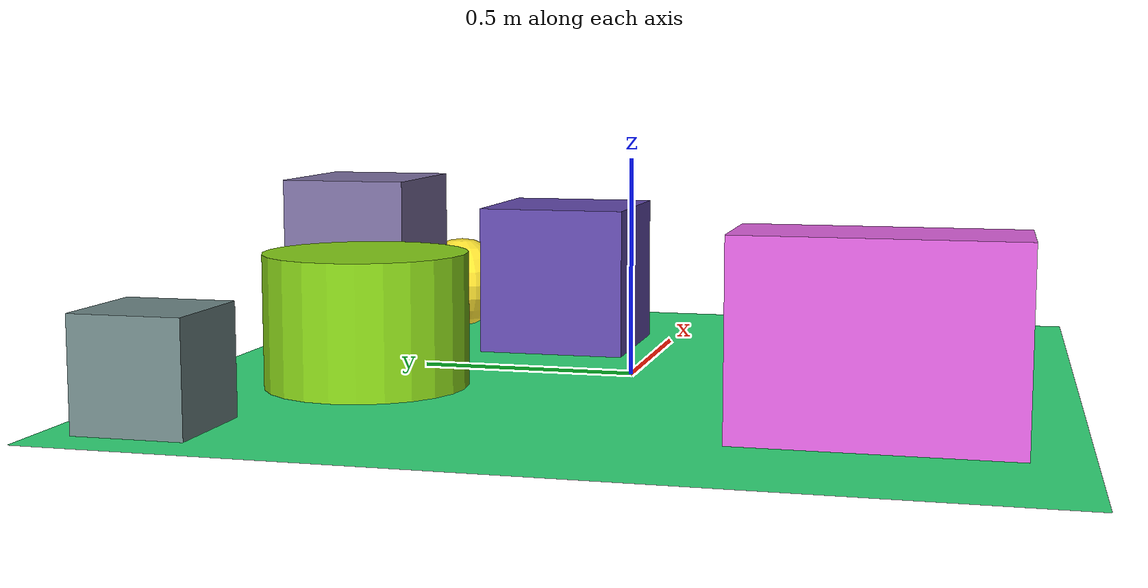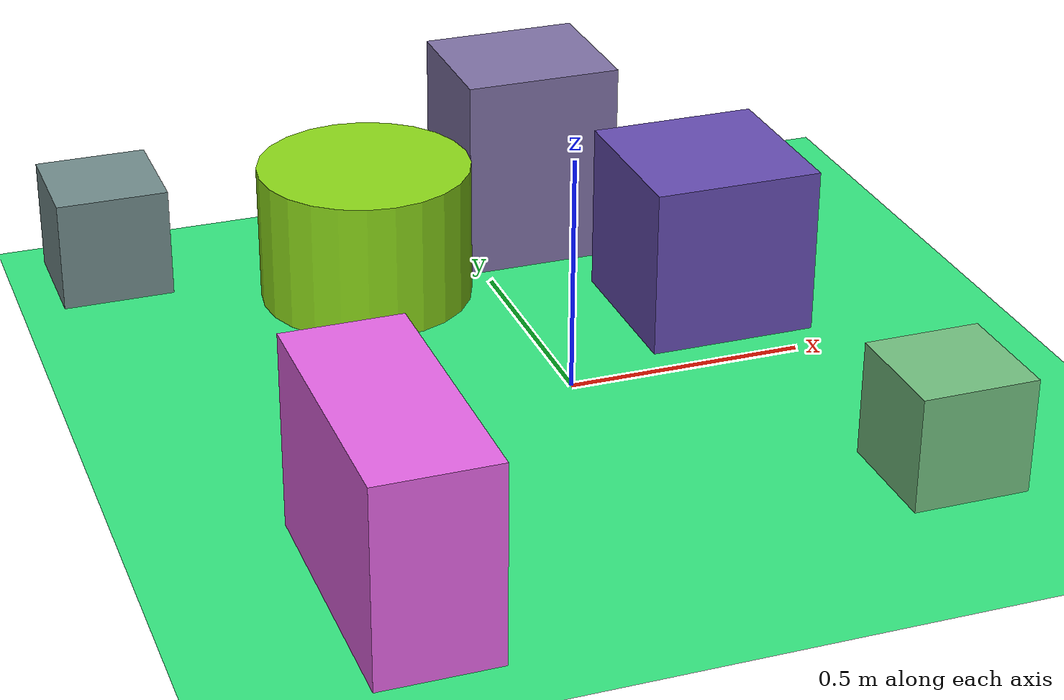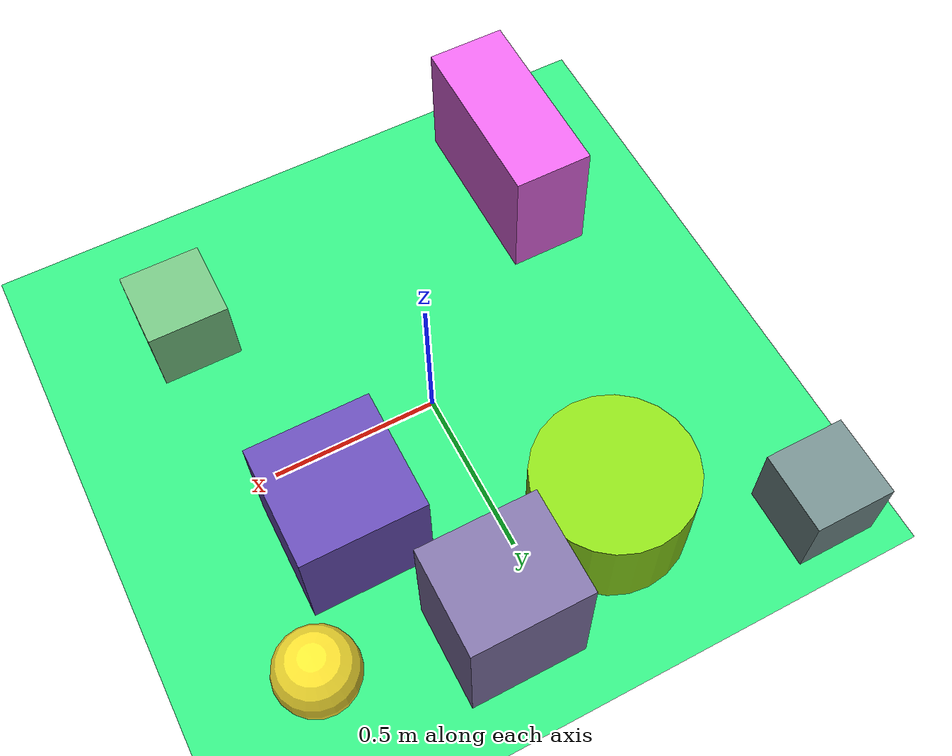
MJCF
<mujoco>
   <asset>
<texture type="skybox" builtin="gradient" rgb1="0.7 0.2 0.0" rgb2="0.8 0.5 0.6" width="256" height="256"/>
<texture name="checker_0" builtin="checker" rgb1="0.4 0.9 0.1" rgb2="0.5 0.2 1.0" width="200" height="200"/>
<texture name="gradient_1" builtin="gradient" rgb1="0.4 0.5 0.7" rgb2="0.5 1.0 0.3" width="200" height="200"/>
<texture name="checker_2" builtin="checker" rgb1="1.0 0.0 0.7" rgb2="0.0 0.9 0.6" width="200" height="200"/>
<texture name="flat_3" builtin="flat" rgb1="0.4 0.3 0.7" rgb2="0.4 0.3 0.7"  width="200" height="200"/>
<texture name="flat_4" builtin="flat" rgb1="0.9 0.4 0.9" rgb2="0.9 0.4 0.9"  width="200" height="200"/>
<texture name="flat_5" builtin="flat" rgb1="1.0 0.9 0.2" rgb2="1.0 0.9 0.2"  width="200" height="200"/>
<texture name="gradient_6" builtin="gradient" rgb1="0.9 0.7 0.1" rgb2="0.2 1.0 0.1" width="200" height="200"/><material name="checker_0_mat" reflectance="0" texrepeat="2 2" texture="checker_0" texuniform="false" />
<material name="gradient_1_mat" reflectance="0" texture="gradient_1" texuniform="true"/>
<material name="checker_2_mat" reflectance="0" texrepeat="2 2" texture="checker_2" texuniform="false" />
<material name="flat_3_mat" reflectance="0" texture="flat_3" texuniform="true"/>
<material name="flat_4_mat" reflectance="0" texture="flat_4" texuniform="true"/>
<material name="flat_5_mat" reflectance="0" texture="flat_5" texuniform="true"/>
<material name="gradient_6_mat" reflectance="0" texture="gradient_6" texuniform="true"/>
   </asset>

   <worldbody>
      <light diffuse=".9 .9 .9" pos="0 0 3" dir="0 0 -1"/>
     <geom type="plane" size="1 1 0.1" rgba="0.2 0.9 0.5 1"/>
<geom type="box" pos="-0.79 0.8 0.12" size="0.12 0.12 0.12" material="checker_0_mat" />
<geom type="box" pos="0.55 -0.55 0.12" size="0.12 0.12 0.12" material="gradient_1_mat" />
<geom type="box" pos="0.14 0.7 0.22" size="0.17 0.15 0.22" material="checker_2_mat" />
<geom type="box" pos="0.39 0.25 0.18" size="0.18 0.18 0.18" material="flat_3_mat" />
<geom type="box" pos="-0.57 -0.6 0.2" size="0.12 0.28 0.2" material="flat_4_mat" />
<geom type="sphere" pos="0.63 0.61 0.12" size="0.12 0.12 0.12" material="flat_5_mat" />
<geom type="cylinder" pos="-0.27 0.55 0.15" size="0.23 0.15 0.15" material="gradient_6_mat" /><camera euler="60 0 180" fovy="60" name="camera1" pos="0 -1.5 1"></camera>   </worldbody>
</mujoco>
